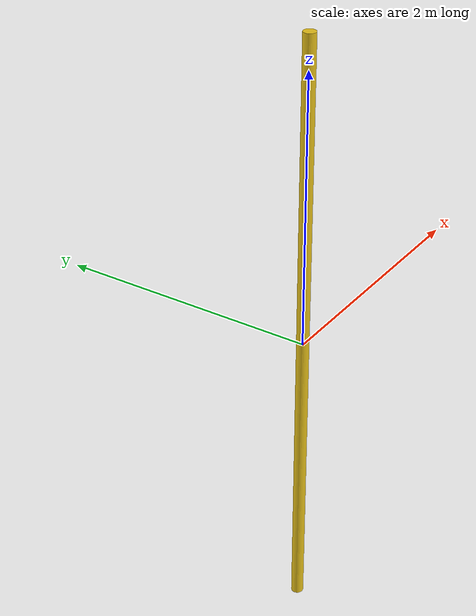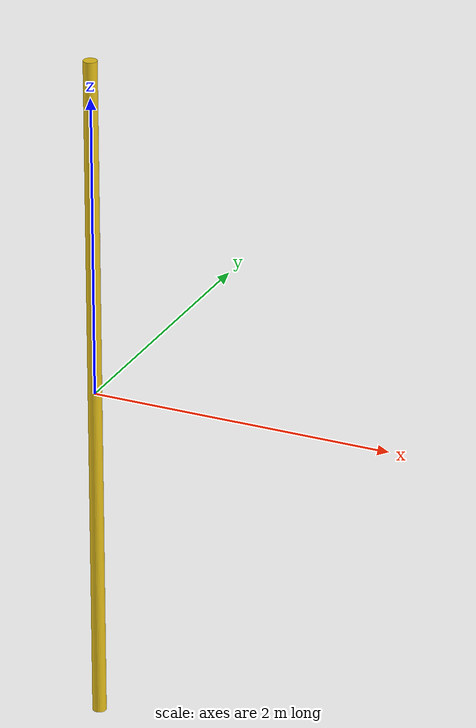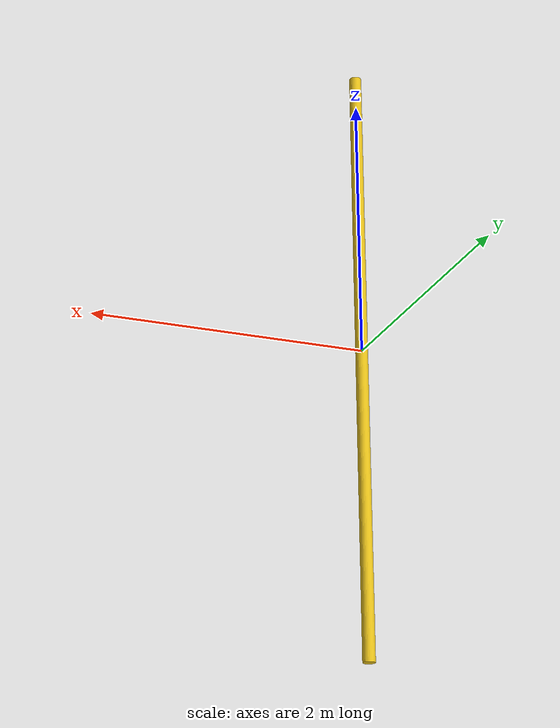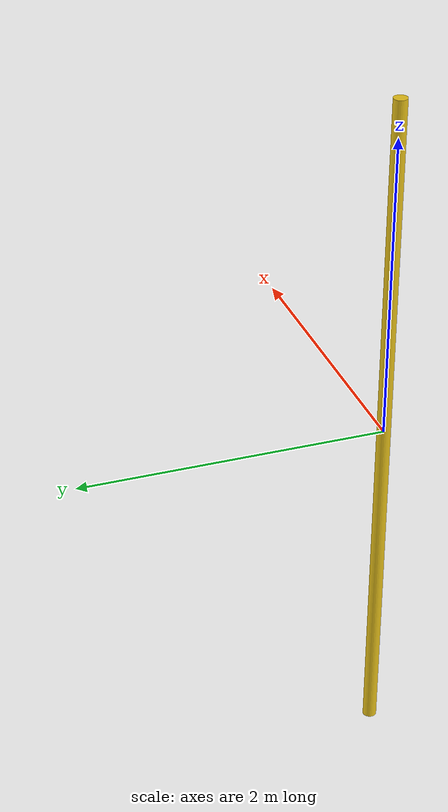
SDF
<?xml version="1.0"?>
<sdf version="1.10">
  <model name="wire_4p5m_yellow">
    <static>true</static>
    <link name="link">
      <visual name="wire">
        <geometry><cylinder><radius>0.045</radius><length>4.5</length></cylinder></geometry>
        <material>
          <ambient>0.720 0.600 0.080 1</ambient>
          <diffuse>0.900 0.750 0.100 1</diffuse>
        </material>
      </visual>
    </link>
  </model>
</sdf>
